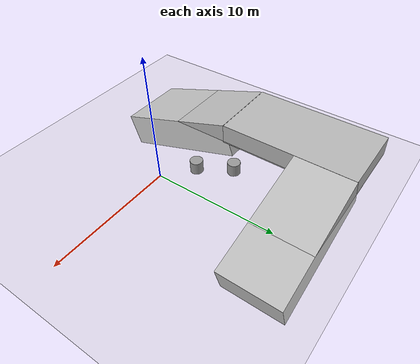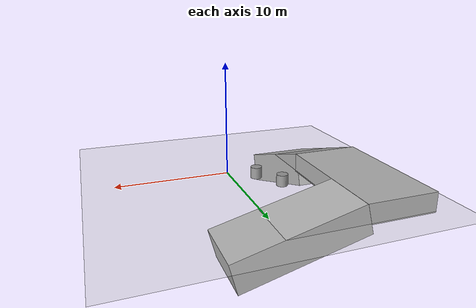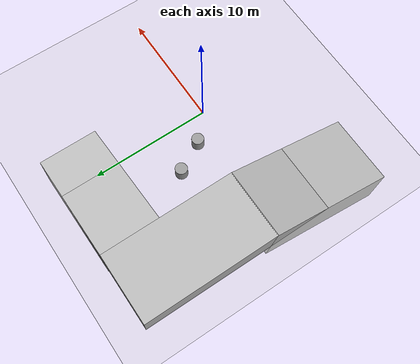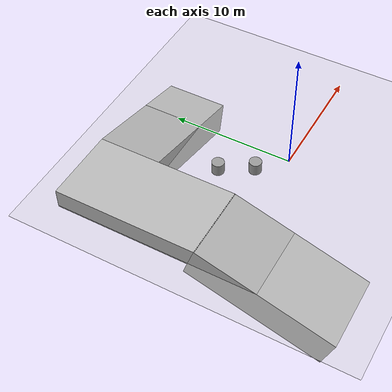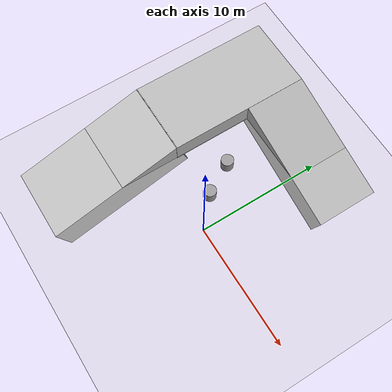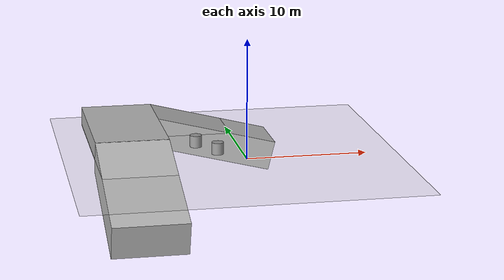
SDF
<sdf version="1.7">
 <world name="default">
  <light name="sun" type="directional">
   <pose>0 0 10 0 -0 0</pose>
   <diffuse>0.8 0.8 0.8 1</diffuse>
   <specular>0.2 0.2 0.2 1</specular>
   <attenuation>
    <range>1000</range>
    <constant>0.9</constant>
    <linear>0.01</linear>
    <quadratic>0.001</quadratic>
   </attenuation>
   <direction>-0.5 0.1 -0.9</direction>
   <spot><inner_angle>0</inner_angle><outer_angle>0</outer_angle><falloff>0</falloff></spot>
  </light>
  <model name="ground_plane">
   <static>1</static>
   <link name="link">
    <collision name="collision">
     <geometry><plane><normal>0 0 1</normal><size>100 100</size></plane></geometry>
     <surface><friction><ode><mu>100</mu><mu2>50</mu2></ode></friction></surface>
    </collision>
    <visual name="visual">
     <cast_shadows>0</cast_shadows>
     <geometry><plane><normal>0 0 1</normal><size>100 100</size></plane></geometry>
     <material>
      <script><uri>file://media/materials/scripts/gazebo.material</uri><name>Gazebo/Grey</name></script>
     </material>
    </visual>
   </link>
  </model>
  <gravity>0 0 -9.8</gravity>
  <magnetic_field>6e-06 2.3e-05 -4.2e-05</magnetic_field>
  <atmosphere type="adiabatic"/>
  <physics type="ode">
   <max_step_size>0.001</max_step_size>
   <real_time_factor>1</real_time_factor>
   <real_time_update_rate>1000</real_time_update_rate>
  </physics>
  <scene><ambient>0.4 0.4 0.4 1</ambient><background>0.7 0.7 0.7 1</background><shadows>1</shadows></scene>
  <audio><device>default</device></audio>
  <spherical_coordinates>
   <surface_model>EARTH_WGS84</surface_model>
   <latitude_deg>0</latitude_deg>
   <longitude_deg>0</longitude_deg>
   <elevation>0</elevation>
   <heading_deg>0</heading_deg>
  </spherical_coordinates>
  <light name="user_directional_light_0" type="directional">
   <pose>15.7085 -36.9019 1 0 -0 0</pose>
   <diffuse>0.5 0.5 0.5 1</diffuse>
   <specular>0.1 0.1 0.1 1</specular>
   <direction>0.1 0.1 -0.9</direction>
   <attenuation>
    <range>20</range>
    <constant>0.5</constant>
    <linear>0.01</linear>
    <quadratic>0.001</quadratic>
   </attenuation>
  </light>
  <light name="user_directional_light_1" type="directional">
   <pose>15.4289 -36.8739 1 0 -0 0</pose>
   <diffuse>0.5 0.5 0.5 1</diffuse>
   <specular>0.1 0.1 0.1 1</specular>
   <direction>0.1 0.1 -0.9</direction>
   <attenuation>
    <range>20</range>
    <constant>0.5</constant>
    <linear>0.01</linear>
    <quadratic>0.001</quadratic>
   </attenuation>
  </light>
  <light name="user_directional_light_2" type="directional">
   <pose>15.4923 -36.7005 1 0 -0 0</pose>
   <diffuse>0.5 0.5 0.5 1</diffuse>
   <specular>0.1 0.1 0.1 1</specular>
   <direction>0.1 0.1 -0.9</direction>
   <attenuation>
    <range>20</range>
    <constant>0.5</constant>
    <linear>0.01</linear>
    <quadratic>0.001</quadratic>
   </attenuation>
  </light>
  <light name="user_directional_light_3" type="directional">
   <pose>14.9949 -36.6477 1 0 -0 0</pose>
   <diffuse>0.5 0.5 0.5 1</diffuse>
   <specular>0.1 0.1 0.1 1</specular>
   <direction>0.1 0.1 -0.9</direction>
   <attenuation>
    <range>20</range>
    <constant>0.5</constant>
    <linear>0.01</linear>
    <quadratic>0.001</quadratic>
   </attenuation>
  </light>
  <light name="user_directional_light_4" type="directional">
   <pose>15.0122 -36.5767 1 0 -0 0</pose>
   <diffuse>0.5 0.5 0.5 1</diffuse>
   <specular>0.1 0.1 0.1 1</specular>
   <direction>0.1 0.1 -0.9</direction>
   <attenuation>
    <range>20</range>
    <constant>0.5</constant>
    <linear>0.01</linear>
    <quadratic>0.001</quadratic>
   </attenuation>
  </light>
  <light name="user_directional_light_5" type="directional">
   <pose>15.432 -36.9337 1 0 -0 0</pose>
   <diffuse>0.5 0.5 0.5 1</diffuse>
   <specular>0.1 0.1 0.1 1</specular>
   <direction>0.1 0.1 -0.9</direction>
   <attenuation>
    <range>20</range>
    <constant>0.5</constant>
    <linear>0.01</linear>
    <quadratic>0.001</quadratic>
   </attenuation>
  </light>
  <light name="user_directional_light_6" type="directional">
   <pose>15.7077 -36.8021 1 0 -0 0</pose>
   <diffuse>0.5 0.5 0.5 1</diffuse>
   <specular>0.1 0.1 0.1 1</specular>
   <direction>0.1 0.1 -0.9</direction>
   <attenuation>
    <range>20</range>
    <constant>0.5</constant>
    <linear>0.01</linear>
    <quadratic>0.001</quadratic>
   </attenuation>
  </light>
  <model name="slope_ros2">
   <link name="slope_down">
    <pose>5.93392 0.081427 -0.964279 0 0.248274 0</pose>
    <inertial>
     <inertia><ixx>0</ixx><ixy>0</ixy><ixz>0</ixz><iyy>0</iyy><iyz>0</iyz><izz>0</izz></inertia>
     <mass>0</mass>
    </inertial>
    <visual name="visual">
     <geometry><box><size>10.6012 5.12132 2.52711</size></box></geometry>
     <material><shader type="pixel"/></material>
    </visual>
    <collision name="collision">
     <geometry><box><size>10.6012 5.12132 2.52711</size></box></geometry>
     <surface>
      <friction>
       <ode><mu>1</mu><mu2>1</mu2><fdir1>0 0 0</fdir1><slip1>0</slip1><slip2>0</slip2></ode>
       <torsional>
        <coefficient>1</coefficient>
        <patch_radius>0</patch_radius>
        <surface_radius>0</surface_radius>
        <use_patch_radius>1</use_patch_radius>
        <ode><slip>0</slip></ode>
       </torsional>
      </friction>
      <bounce><restitution_coefficient>0</restitution_coefficient><threshold>1e+06</threshold></bounce>
      <contact>
       <collide_without_contact>0</collide_without_contact>
       <collide_without_contact_bitmask>1</collide_without_contact_bitmask>
       <collide_bitmask>1</collide_bitmask>
       <ode>
        <soft_cfm>0</soft_cfm>
        <soft_erp>0.2</soft_erp>
        <kp>1e+13</kp>
        <kd>1</kd>
        <max_vel>0.01</max_vel>
        <min_depth>0</min_depth>
       </ode>
       <bullet>
        <split_impulse>1</split_impulse>
        <split_impulse_penetration_threshold>-0.01</split_impulse_penetration_threshold>
        <soft_cfm>0</soft_cfm>
        <soft_erp>0.2</soft_erp>
        <kp>1e+13</kp>
        <kd>1</kd>
       </bullet>
      </contact>
     </surface>
    </collision>
   </link>
   <link name="slope_zero">
    <pose>-1.92902 -3.18844 0.7221 0 -0 0</pose>
    <inertial>
     <inertia><ixx>0</ixx><ixy>0</ixy><ixz>0</ixz><iyy>0</iyy><iyz>0</iyz><izz>0</izz></inertia>
     <mass>0</mass>
    </inertial>
    <visual name="visual">
     <geometry><box><size>6.10024 11.649 1.69097</size></box></geometry>
     <material><shader type="pixel"><normal_map>__default__</normal_map></shader></material>
    </visual>
    <collision name="collision">
     <geometry><box><size>6.10024 11.649 1.69097</size></box></geometry>
     <surface>
      <friction>
       <ode><mu>1</mu><mu2>1</mu2><fdir1>0 0 0</fdir1><slip1>0</slip1><slip2>0</slip2></ode>
       <torsional>
        <coefficient>1</coefficient>
        <patch_radius>0</patch_radius>
        <surface_radius>0</surface_radius>
        <use_patch_radius>1</use_patch_radius>
        <ode><slip>0</slip></ode>
       </torsional>
      </friction>
      <bounce><restitution_coefficient>0</restitution_coefficient><threshold>1e+06</threshold></bounce>
      <contact>
       <collide_without_contact>0</collide_without_contact>
       <collide_without_contact_bitmask>1</collide_without_contact_bitmask>
       <collide_bitmask>1</collide_bitmask>
       <ode>
        <soft_cfm>0</soft_cfm>
        <soft_erp>0.2</soft_erp>
        <kp>1e+13</kp>
        <kd>1</kd>
        <max_vel>0.01</max_vel>
        <min_depth>0</min_depth>
       </ode>
       <bullet>
        <split_impulse>1</split_impulse>
        <split_impulse_penetration_threshold>-0.01</split_impulse_penetration_threshold>
        <soft_cfm>0</soft_cfm>
        <soft_erp>0.2</soft_erp>
        <kp>1e+13</kp>
        <kd>1</kd>
       </bullet>
      </contact>
     </surface>
    </collision>
   </link>
   <link name="slope_zero_clone">
    <pose>-1.93376 -14.052 -1.61461 0.312639 -0 0</pose>
    <inertial>
     <inertia><ixx>0</ixx><ixy>0</ixy><ixz>0</ixz><iyy>0</iyy><iyz>0</iyz><izz>0</izz></inertia>
     <mass>0</mass>
    </inertial>
    <visual name="visual">
     <geometry><box><size>6.10024 11.649 2.93132</size></box></geometry>
     <material><shader type="pixel"><normal_map>__default__</normal_map></shader></material>
    </visual>
    <collision name="collision">
     <geometry><box><size>6.10024 11.649 2.93132</size></box></geometry>
     <surface>
      <friction>
       <ode><mu>1</mu><mu2>1</mu2><fdir1>0 0 0</fdir1><slip1>0</slip1><slip2>0</slip2></ode>
       <torsional>
        <coefficient>1</coefficient>
        <patch_radius>0</patch_radius>
        <surface_radius>0</surface_radius>
        <use_patch_radius>1</use_patch_radius>
        <ode><slip>0</slip></ode>
       </torsional>
      </friction>
      <bounce><restitution_coefficient>0</restitution_coefficient><threshold>1e+06</threshold></bounce>
      <contact>
       <collide_without_contact>0</collide_without_contact>
       <collide_without_contact_bitmask>1</collide_without_contact_bitmask>
       <collide_bitmask>1</collide_bitmask>
       <ode>
        <soft_cfm>0</soft_cfm>
        <soft_erp>0.2</soft_erp>
        <kp>1e+13</kp>
        <kd>1</kd>
        <max_vel>0.01</max_vel>
        <min_depth>0</min_depth>
       </ode>
       <bullet>
        <split_impulse>1</split_impulse>
        <split_impulse_penetration_threshold>-0.01</split_impulse_penetration_threshold>
        <soft_cfm>0</soft_cfm>
        <soft_erp>0.2</soft_erp>
        <kp>1e+13</kp>
        <kd>1</kd>
       </bullet>
      </contact>
     </surface>
    </collision>
   </link>
   <static>1</static>
   <pose>-7.30413 10.4907 0 0 -0 0</pose>
  </model>
  <model name="unit_cylinder">
   <pose>-2.11384 1.89554 0.499993 -3e-06 -4e-06 -0</pose>
   <link name="link">
    <inertial>
     <mass>1</mass>
     <inertia><ixx>0.145833</ixx><ixy>0</ixy><ixz>0</ixz><iyy>0.145833</iyy><iyz>0</iyz><izz>0.125</izz></inertia>
    </inertial>
    <collision name="collision">
     <geometry><cylinder><radius>0.5</radius><length>1</length></cylinder></geometry>
    </collision>
    <visual name="visual">
     <geometry><cylinder><radius>0.5</radius><length>1</length></cylinder></geometry>
     <material>
      <script><name>Gazebo/Grey</name><uri>file://media/materials/scripts/gazebo.material</uri></script>
     </material>
    </visual>
   </link>
  </model>
  <model name="unit_cylinder_clone">
   <pose>-3.53536 4.37137 0.499997 3e-06 4e-06 -0</pose>
   <link name="link">
    <inertial>
     <mass>1</mass>
     <inertia><ixx>0.145833</ixx><ixy>0</ixy><ixz>0</ixz><iyy>0.145833</iyy><iyz>0</iyz><izz>0.125</izz></inertia>
    </inertial>
    <collision name="collision">
     <geometry><cylinder><radius>0.5</radius><length>1</length></cylinder></geometry>
    </collision>
    <visual name="visual">
     <geometry><cylinder><radius>0.5</radius><length>1</length></cylinder></geometry>
     <material>
      <script><name>Gazebo/Grey</name><uri>file://media/materials/scripts/gazebo.material</uri></script>
     </material>
    </visual>
   </link>
  </model>
  <light name="user_point_light_0" type="point">
   <pose>-2.33221 1.87075 1 0 -0 0</pose>
   <diffuse>0.5 0.5 0.5 1</diffuse>
   <specular>0.1 0.1 0.1 1</specular>
   <attenuation>
    <range>20</range>
    <constant>0.5</constant>
    <linear>0.01</linear>
    <quadratic>0.001</quadratic>
   </attenuation>
   <cast_shadows>0</cast_shadows>
   <direction>0 0 -1</direction>
  </light>
  <light name="user_point_light_1" type="point">
   <pose>-3.71476 4.37595 1 0 -0 0</pose>
   <diffuse>0.5 0.5 0.5 1</diffuse>
   <specular>0.1 0.1 0.1 1</specular>
   <attenuation>
    <range>20</range>
    <constant>0.5</constant>
    <linear>0.01</linear>
    <quadratic>0.001</quadratic>
   </attenuation>
   <cast_shadows>0</cast_shadows>
   <direction>0 0 -1</direction>
  </light>
 </world>
</sdf>
